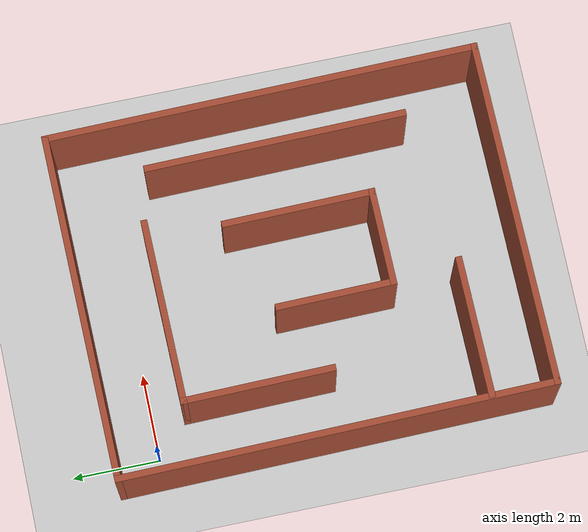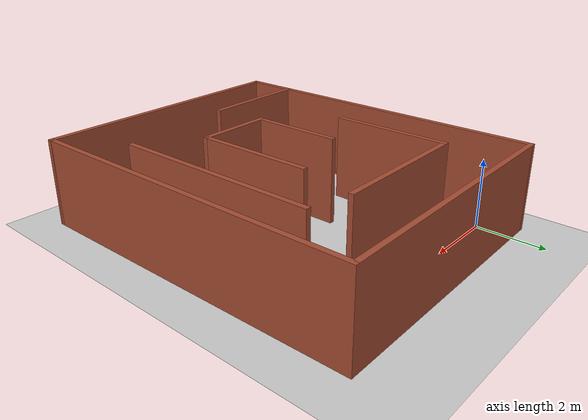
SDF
<sdf version="1.7">
 <world name="default">
  <light name="sun" type="directional">
   <pose>0 0 10 0 -0 0</pose>
   <diffuse>0.8 0.8 0.8 1</diffuse>
   <specular>0.2 0.2 0.2 1</specular>
   <attenuation>
    <range>1000</range>
    <constant>0.9</constant>
    <linear>0.01</linear>
    <quadratic>0.001</quadratic>
   </attenuation>
   <direction>-0.5 0.1 -0.9</direction>
   <spot><inner_angle>0</inner_angle><outer_angle>0</outer_angle><falloff>0</falloff></spot>
  </light>
  <model name="ground_plane">
   <static>1</static>
   <link name="link">
    <collision name="collision">
     <geometry><plane><normal>0 0 1</normal><size>100 100</size></plane></geometry>
     <surface><friction><ode><mu>100</mu><mu2>50</mu2></ode></friction></surface>
    </collision>
    <visual name="visual">
     <cast_shadows>0</cast_shadows>
     <geometry><plane><normal>0 0 1</normal><size>100 100</size></plane></geometry>
     <material>
      <script><uri>file://media/materials/scripts/gazebo.material</uri><name>Gazebo/Grey</name></script>
     </material>
    </visual>
   </link>
  </model>
  <gravity>0 0 -9.8</gravity>
  <magnetic_field>6e-06 2.3e-05 -4.2e-05</magnetic_field>
  <atmosphere type="adiabatic"/>
  <physics type="ode">
   <max_step_size>0.001</max_step_size>
   <real_time_factor>1</real_time_factor>
   <real_time_update_rate>1000</real_time_update_rate>
  </physics>
  <scene><ambient>0.4 0.4 0.4 1</ambient><background>0.7 0.7 0.7 1</background><shadows>1</shadows></scene>
  <audio><device>default</device></audio>
  <spherical_coordinates>
   <surface_model>EARTH_WGS84</surface_model>
   <latitude_deg>0</latitude_deg>
   <longitude_deg>0</longitude_deg>
   <elevation>0</elevation>
   <heading_deg>0</heading_deg>
  </spherical_coordinates>
  <model name="article">
   <pose>3.38282 -3.90725 0 0 0 -1.55484</pose>
   <link name="Wall_0">
    <collision name="Wall_0_Collision">
     <geometry><box><size>10 0.15 2.5</size></box></geometry>
     <pose>0 0 1.25 0 -0 0</pose>
    </collision>
    <visual name="Wall_0_Visual">
     <pose>0 0 1.25 0 -0 0</pose>
     <geometry><box><size>10 0.15 2.5</size></box></geometry>
     <material>
      <script><uri>file://media/materials/scripts/gazebo.material</uri><name>Gazebo/Bricks</name></script>
      <ambient>1 1 1 1</ambient>
     </material>
     <meta><layer>0</layer></meta>
    </visual>
    <pose>0 3.925 0 0 -0 0</pose>
   </link>
   <link name="Wall_11">
    <collision name="Wall_11_Collision">
     <geometry><box><size>3.5 0.15 2.5</size></box></geometry>
     <pose>0 0 1.25 0 -0 0</pose>
    </collision>
    <visual name="Wall_11_Visual">
     <pose>0 0 1.25 0 -0 0</pose>
     <geometry><box><size>3.5 0.15 2.5</size></box></geometry>
     <material>
      <script><uri>file://media/materials/scripts/gazebo.material</uri><name>Gazebo/Bricks</name></script>
      <ambient>1 1 1 1</ambient>
     </material>
     <meta><layer>0</layer></meta>
    </visual>
    <pose>0.25 1.145 0 0 -0 0</pose>
   </link>
   <link name="Wall_12">
    <collision name="Wall_12_Collision">
     <geometry><box><size>2.25 0.15 2.5</size></box></geometry>
     <pose>0 0 1.25 0 -0 0</pose>
    </collision>
    <visual name="Wall_12_Visual">
     <pose>0 0 1.25 0 -0 0</pose>
     <geometry><box><size>2.25 0.15 2.5</size></box></geometry>
     <material>
      <script><uri>file://media/materials/scripts/gazebo.material</uri><name>Gazebo/Bricks</name></script>
      <ambient>1 1 1 1</ambient>
     </material>
     <meta><layer>0</layer></meta>
    </visual>
    <pose>1.925 0.095 0 0 -0 -1.5708</pose>
   </link>
   <link name="Wall_13">
    <collision name="Wall_13_Collision">
     <geometry><box><size>2.75 0.15 2.5</size></box></geometry>
     <pose>0 0 1.25 0 -0 0</pose>
    </collision>
    <visual name="Wall_13_Visual">
     <pose>0 0 1.25 0 -0 0</pose>
     <geometry><box><size>2.75 0.15 2.5</size></box></geometry>
     <material>
      <script><uri>file://media/materials/scripts/gazebo.material</uri><name>Gazebo/Bricks</name></script>
      <ambient>1 1 1 1</ambient>
     </material>
     <meta><layer>0</layer></meta>
    </visual>
    <pose>0.625 -0.955 0 0 -0 3.14159</pose>
   </link>
   <link name="Wall_16">
    <collision name="Wall_16_Collision">
     <geometry><box><size>3.25 0.15 2.5</size></box></geometry>
     <pose>0 0 1.25 0 -0 0</pose>
    </collision>
    <visual name="Wall_16_Visual">
     <pose>0 0 1.25 0 -0 0</pose>
     <geometry><box><size>3.25 0.15 2.5</size></box></geometry>
     <material>
      <script><uri>file://media/materials/scripts/gazebo.material</uri><name>Gazebo/Bricks</name></script>
      <ambient>1 1 1 1</ambient>
     </material>
     <meta><layer>0</layer></meta>
    </visual>
    <pose>3.455 -2.345 0 0 -0 1.5708</pose>
   </link>
   <link name="Wall_2">
    <collision name="Wall_2_Collision">
     <geometry><box><size>8 0.15 2.5</size></box></geometry>
     <pose>0 0 1.25 0 -0 0</pose>
    </collision>
    <visual name="Wall_2_Visual">
     <pose>0 0 1.25 0 -0 0</pose>
     <geometry><box><size>8 0.15 2.5</size></box></geometry>
     <material>
      <script><uri>file://media/materials/scripts/gazebo.material</uri><name>Gazebo/Bricks</name></script>
      <ambient>1 1 1 1</ambient>
     </material>
     <meta><layer>0</layer></meta>
    </visual>
    <pose>4.925 0 0 0 -0 -1.5708</pose>
   </link>
   <link name="Wall_3">
    <collision name="Wall_3_Collision">
     <geometry><box><size>10 0.15 2.5</size></box></geometry>
     <pose>0 0 1.25 0 -0 0</pose>
    </collision>
    <visual name="Wall_3_Visual">
     <pose>0 0 1.25 0 -0 0</pose>
     <geometry><box><size>10 0.15 2.5</size></box></geometry>
     <material>
      <script><uri>file://media/materials/scripts/gazebo.material</uri><name>Gazebo/Bricks</name></script>
      <ambient>1 1 1 1</ambient>
     </material>
     <meta><layer>0</layer></meta>
    </visual>
    <pose>0 -3.925 0 0 -0 3.14159</pose>
   </link>
   <link name="Wall_4">
    <collision name="Wall_4_Collision">
     <geometry><box><size>8 0.15 2.5</size></box></geometry>
     <pose>0 0 1.25 0 -0 0</pose>
    </collision>
    <visual name="Wall_4_Visual">
     <pose>0 0 1.25 0 -0 0</pose>
     <geometry><box><size>8 0.15 2.5</size></box></geometry>
     <material>
      <script><uri>file://media/materials/scripts/gazebo.material</uri><name>Gazebo/Bricks</name></script>
      <ambient>1 1 1 1</ambient>
     </material>
     <meta><layer>0</layer></meta>
    </visual>
    <pose>-4.925 0 0 0 -0 1.5708</pose>
   </link>
   <link name="Wall_6">
    <collision name="Wall_6_Collision">
     <geometry><box><size>6 0.15 2.5</size></box></geometry>
     <pose>0 0 1.25 0 -0 0</pose>
    </collision>
    <visual name="Wall_6_Visual">
     <pose>0 0 1.25 0 -0 0</pose>
     <geometry><box><size>6 0.15 2.5</size></box></geometry>
     <material>
      <script><uri>file://media/materials/scripts/gazebo.material</uri><name>Gazebo/Bricks</name></script>
      <ambient>1 1 1 1</ambient>
     </material>
     <meta><layer>0</layer></meta>
    </visual>
    <pose>0.08 2.765 0 0 -0 0</pose>
   </link>
   <link name="Wall_8">
    <collision name="Wall_8_Collision">
     <geometry><box><size>4.25 0.15 2.5</size></box></geometry>
     <pose>0 0 1.25 0 -0 0</pose>
    </collision>
    <visual name="Wall_8_Visual">
     <pose>0 0 1.25 0 -0 0</pose>
     <geometry><box><size>4.25 0.15 2.5</size></box></geometry>
     <material>
      <script><uri>file://media/materials/scripts/gazebo.material</uri><name>Gazebo/Bricks</name></script>
      <ambient>1 1 1 1</ambient>
     </material>
     <meta><layer>0</layer></meta>
    </visual>
    <pose>-3.165 -0.505 0 0 -0 -1.5708</pose>
   </link>
   <link name="Wall_9">
    <collision name="Wall_9_Collision">
     <geometry><box><size>3.5 0.15 2.5</size></box></geometry>
     <pose>0 0 1.25 0 -0 0</pose>
    </collision>
    <visual name="Wall_9_Visual">
     <pose>0 0 1.25 0 -0 0</pose>
     <geometry><box><size>3.5 0.15 2.5</size></box></geometry>
     <material>
      <script><uri>file://media/materials/scripts/gazebo.material</uri><name>Gazebo/Bricks</name></script>
      <ambient>1 1 1 1</ambient>
     </material>
     <meta><layer>0</layer></meta>
    </visual>
    <pose>-1.49 -2.555 0 0 -0 0</pose>
   </link>
   <static>1</static>
  </model>
 </world>
</sdf>
